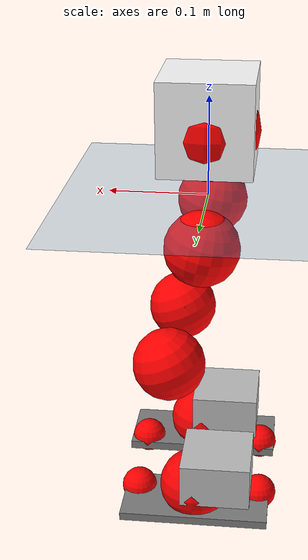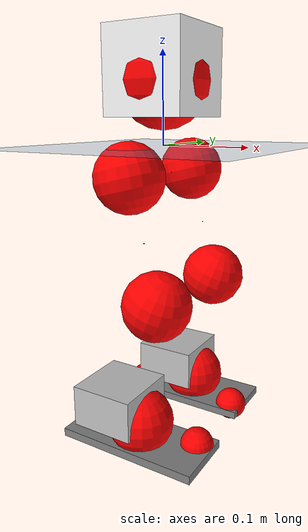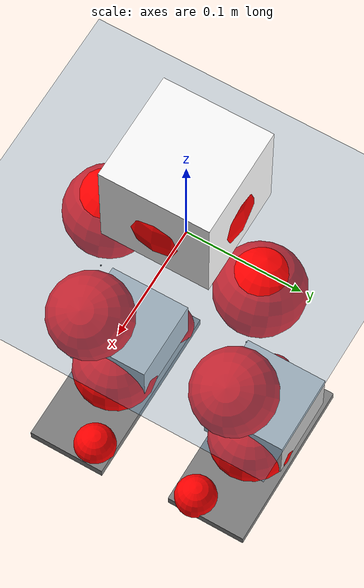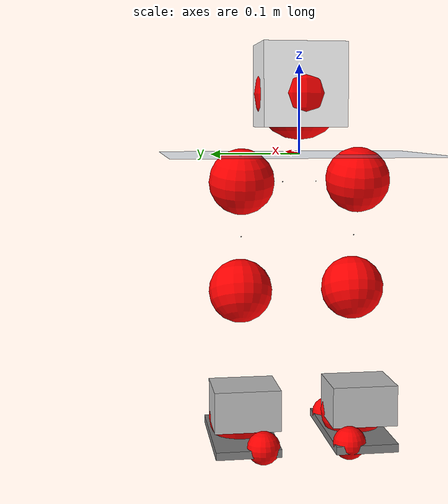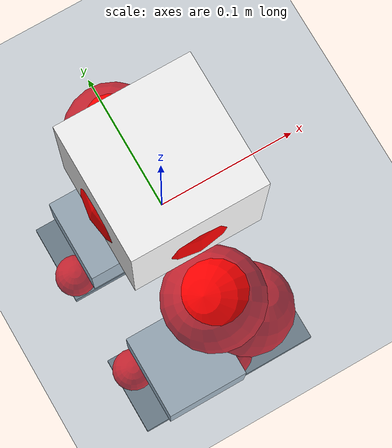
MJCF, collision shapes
<mujoco model="pi_12dof_release_v1">
  <compiler angle="radian" assetdir="assets" balanceinertia="true" inertiafromgeom="false"/>

  <option timestep="0.005" density="1.2" viscosity="2e-05"/>

  <size nkey="1"/>

  <visual>
    <quality shadowsize="8192"/>
    <map shadowclip="0.5"/>
  </visual>

  <default>
    <default class="/">
      <joint armature="0.01" damping="0.01" frictionloss="0.01"/>
      <geom contype="0" conaffinity="0" group="1" solref="-1000 -80"/>
      <site size="0.01 0.005 0.005" group="5"/>
      <general forcelimited="true" biastype="affine" gainprm="20" biasprm="0 -20 -0.5"/>
      <default class="foot">
        <geom size="0.0845 0.036 0.005" type="box" condim="6" group="4" priority="1" friction="0.9 0.2 0.2" solimp="0.015 1 0.005"/>
      </default>
      <default class="reward_collision_sphere">
        <geom group="5" rgba="1 0 0 1"/>
      </default>
    </default>
  </default>

  <asset>
    <texture type="skybox" colorspace="auto" name="//unnamed_texture_0" builtin="gradient" rgb1="0.95 0.95 0.95" rgb2="0.95 0.95 0.95" width="100" height="600"/>
    <texture type="2d" colorspace="auto" name="texplane" builtin="checker" rgb1="0.345 0.575 0.748" rgb2="0.345 0.575 0.748" markrgb="1 1 1" width="512" height="512"/>
    <material name="MatPlane" class="/" texture="texplane" texuniform="true" texrepeat="2 2" specular="0.9"/>
    <mesh name="baselink_1" class="/" file="baselink_1.STL"/>
    <mesh name="r_hip_pitch_link" class="/" file="r_hip_pitch_link.STL"/>
    <mesh name="r_hip_roll_link" class="/" file="r_hip_roll_link.STL"/>
    <mesh name="r_thigh_link" class="/" file="r_thigh_link.STL"/>
    <mesh name="r_calf_link" class="/" file="r_calf_link.STL"/>
    <mesh name="r_ankle_pitch_link" class="/" file="r_ankle_pitch_link.STL"/>
    <mesh name="r_ankle_roll_link" class="/" file="r_ankle_roll_link.STL"/>
    <mesh name="l_hip_pitch_link" class="/" file="l_hip_pitch_link.STL"/>
    <mesh name="l_hip_roll_link" class="/" file="l_hip_roll_link.STL"/>
    <mesh name="l_thigh_link" class="/" file="l_thigh_link.STL"/>
    <mesh name="l_calf_link" class="/" file="l_calf_link.STL"/>
    <mesh name="l_ankle_pitch_link" class="/" file="l_ankle_pitch_link.STL"/>
    <mesh name="l_ankle_roll_link" class="/" file="l_ankle_roll_link.STL"/>
  </asset>

  <worldbody>
    <geom name="floor" class="/" size="100 100 0.125" type="plane" group="0" material="MatPlane"/>
    <light name="toplight_shadow" class="/" pos="0 0 5" dir="0.0990148 0.0990148 -0.990148" type="directional" ambient="0.04 0.04 0.04" diffuse="0.55 0.55 0.55" specular="0.12 0.12 0.12"/>
    <light name="toplight_fill" class="/" pos="0 0 5" dir="0.0990148 0.0990148 -0.990148" type="directional" castshadow="false" ambient="0.04 0.04 0.04" diffuse="0.3 0.3 0.3" specular="0.08 0.08 0.08"/>
    <body name="trunk" pos="0.00036372 0.000118246 0.000223259" quat="1 0.000239388 7.19728e-05 -7.85383e-06">
      <inertial pos="0.0018977 -0.00195138 0.0375474" quat="0.697807 0.00886043 0.010983 0.716147" mass="1.706" diaginertia="0.00798592 0.00444896 0.00334344"/>
      <joint name="//unnamed_joint_0" type="free"/>
      <geom name="//unnamed_geom_1" class="/" type="mesh" density="0" rgba="1 1 1 1" mesh="baselink_1"/>
      <geom name="//unnamed_geom_2" class="/" size="0.0463717 0.0463717 0.0463717" pos="0 0 0.0764691" type="box" rgba="1 1 1 1"/>
      <geom name="//unnamed_geom_3" class="reward_collision_sphere" size="0.0510089" pos="0 0 0.0669105"/>
      <site name="imu" class="/" pos="-0.00889357 -0.00262928 0.00484761" size="0.00927435"/>
      <camera name="track" class="/" pos="0 -1.73237 0" quat="0.707107 0.707107 0 0" mode="trackcom"/>
      <camera name="ego_camera" class="/" pos="0.0720193 0 0.172055" quat="-0.5 -0.5 0.5 0.5"/>
      <body name="r_hip_pitch_link" pos="-0.000194925 -0.0192328 -0.0312636" quat="0.992214 0.000180532 -0.124546 -0.000142322">
        <inertial pos="0.002164 -0.0476993 0.000153808" quat="-0.0220203 0.705925 -0.0300601 0.707306" mass="0.291633" diaginertia="8.73938e-05 4.80101e-05 6.59226e-05"/>
        <joint name="r_hip_pitch_joint" class="/" pos="0 0 0" axis="-0.00383782 -0.999989 -0.00280655" stiffness="0.00455625" range="-1.74857 1.22197" armature="0.00966251" damping="0.000858053" frictionloss="0.00963862"/>
        <geom name="//unnamed_geom_4" class="/" type="mesh" density="0" rgba="0.75294 0.75294 0.75294 1" mesh="r_hip_pitch_link"/>
        <geom name="//unnamed_geom_5" class="/" size="0.000463717 0.000463717 0.000463717" type="box" rgba="0.75294 0.75294 0.75294 1"/>
        <body name="r_hip_roll_link" pos="0.00144332 -0.0487136 0.00130984" quat="1 1.91045e-05 1.82569e-05 -1.24032e-05">
          <inertial pos="-0.0021958 -0.000188936 -0.0578721" quat="0.705209 -0.0787572 -0.0810508 0.699934" mass="0.307856" diaginertia="0.000269057 0.000135709 0.000102133"/>
          <joint name="r_hip_roll_joint" class="/" pos="0 0 0" axis="-0.999964 -0.00843068 -0.0013234" range="-0.142151 0.482243" armature="0.00976138" damping="0.00683803" frictionloss="0.00927902"/>
          <geom name="//unnamed_geom_6" class="/" type="mesh" density="0" rgba="0.75294 0.75294 0.75294 1" mesh="r_hip_roll_link"/>
          <geom name="//unnamed_geom_7" class="/" size="0.000463717 0.000463717 0.000463717" type="box" rgba="0.75294 0.75294 0.75294 1"/>
          <geom name="//unnamed_geom_8" class="reward_collision_sphere" size="0.0370974"/>
          <body name="r_thigh_link" pos="-0.000123299 0.000291733 -0.0673965" quat="1 4.95463e-05 -0.000306335 8.68618e-05">
            <inertial pos="0.000202536 0.000805214 -0.0452301" quat="0.737384 0.675473 -0.0011244 0.000490777" mass="0.0911288" diaginertia="0.000103019 4.60801e-05 4.66707e-05"/>
            <joint name="r_thigh_joint" class="/" pos="0 0 0" axis="-0.000180333 0.000220378 -1" range="-0.318134 0.584415" armature="0.00925776" damping="0.00351446" frictionloss="0.00948158"/>
            <geom name="//unnamed_geom_9" class="/" type="mesh" density="0" rgba="0.75294 0.75294 0.75294 1" mesh="r_thigh_link"/>
            <geom name="//unnamed_geom_10" class="/" size="0.000463717 0.000463717 0.000463717" type="box" rgba="0.75294 0.75294 0.75294 1"/>
            <body name="r_calf_link" pos="-0.000339414 -0.00194574 -0.0663477" quat="0.947633 5.58787e-05 0.319361 6.9227e-05">
              <inertial pos="0.000477977 -0.00065335 -0.0668112" quat="0.999981 -0.00355527 -0.000459405 0.00496997" mass="0.645863" diaginertia="0.00288923 0.00167728 0.000138237"/>
              <joint name="r_calf_joint" class="/" pos="0 0 0" axis="0.00296612 -0.999993 -0.00230683" stiffness="0.000128705" range="-1.65727 0.630897" armature="0.00944366" damping="0.00578385" frictionloss="0.00971931"/>
              <geom name="//unnamed_geom_11" class="/" type="mesh" density="0" rgba="0.75294 0.75294 0.75294 1" mesh="r_calf_link"/>
              <geom name="//unnamed_geom_12" class="/" size="0.000463717 0.000463717 0.000463717" type="box" rgba="0.75294 0.75294 0.75294 1"/>
              <geom name="//unnamed_geom_13" class="reward_collision_sphere" size="0.0370974"/>
              <body name="r_ankle_pitch_link" pos="0.000718464 0.00265087 -0.133359" quat="0.980064 -1.72313e-06 -0.198681 7.67947e-06">
                <inertial pos="0.00473079 0.00356169 -0.000713107" quat="-0.000462695 0.704882 -0.00200664 0.709321" mass="0.137544" diaginertia="0.000251854 0.00010718 9.42051e-05"/>
                <joint name="r_ankle_pitch_joint" class="/" pos="0 0 0" axis="0.00396784 -0.999992 0.000257753" range="-1.2936 0.505196" armature="0.00915704" damping="0" frictionloss="0.00923397"/>
                <geom name="//unnamed_geom_14" class="/" type="mesh" density="0" rgba="0.75294 0.75294 0.75294 1" mesh="r_ankle_pitch_link"/>
                <geom name="//unnamed_geom_15" class="/" size="0.03617 0.0370974 0.0231859" type="box" rgba="0.75294 0.75294 0.75294 1"/>
                <body name="r_ankle_roll_link" pos="0.0744018 0.00202355 -0.000477925" quat="1 -4.83681e-05 -1.97023e-05 -2.65806e-05">
                  <inertial pos="-0.0232986 0.000377007 -0.0127112" quat="0.561855 0.431316 0.434898 0.556012" mass="0.411912" diaginertia="0.000906021 0.000501077 0.000226289"/>
                  <joint name="r_ankle_roll_joint" class="/" pos="0 0 0" axis="-0.999998 0.0017433 7.24591e-05" range="-0.145292 0.131204" armature="0.00878236" damping="0" frictionloss="0.0096482"/>
                  <geom name="//unnamed_geom_16" class="/" type="mesh" density="0" rgba="0.75294 0.75294 0.75294 1" mesh="r_ankle_roll_link"/>
                  <geom name="//unnamed_geom_17" class="/" type="mesh" rgba="0.75294 0.75294 0.75294 1" mesh="r_ankle_roll_link"/>
                  <geom name="right_foot" class="foot" size="0.0822046 0.0351714 0.00464773" pos="-0.0489731 0 -0.042058"/>
                  <geom name="//unnamed_geom_19" class="reward_collision_sphere" size="0.0370974" pos="-0.0480129 0 -0.0191173"/>
                  <geom name="//unnamed_geom_20" class="reward_collision_sphere" size="0.0185487" pos="0.0144039 0.0173237 -0.0382346"/>
                  <geom name="//unnamed_geom_21" class="reward_collision_sphere" size="0.0185487" pos="-0.115231 0.0173237 -0.0382346"/>
                  <site name="right_foot" class="foot" pos="-0.0489731 0 -0.042058" size="0.00927435"/>
                </body>
              </body>
            </body>
          </body>
        </body>
      </body>
      <body name="l_hip_pitch_link" pos="-0.00137369 0.018992 -0.0311775" quat="0.992195 -0.000109878 -0.124693 -3.35703e-05">
        <inertial pos="-0.000183418 0.0475434 -0.000365632" quat="-0.0385537 0.703447 0.0305295 0.709045" mass="0.308333" diaginertia="0.000104832 5.18053e-05 7.86646e-05"/>
        <joint name="l_hip_pitch_joint" class="/" pos="0 0 0" axis="-0.000520041 0.999996 0.00269182" stiffness="0.00207919" range="-1.26745 1.7558" armature="0.00997931" damping="0.00182028" frictionloss="0.00911808"/>
        <geom name="//unnamed_geom_22" class="/" type="mesh" density="0" rgba="0.75294 0.75294 0.75294 1" mesh="l_hip_pitch_link"/>
        <geom name="//unnamed_geom_23" class="/" size="0.000463717 0.000463717 0.000463717" type="box" rgba="0.75294 0.75294 0.75294 1"/>
        <body name="l_hip_roll_link" pos="0.00118737 0.0465544 -0.000130392" quat="1 -1.36538e-05 7.23412e-05 2.8993e-05">
          <inertial pos="-0.00134898 0.000358459 -0.0588347" quat="0.698841 -0.0761952 -0.0772436 0.707" mass="0.310183" diaginertia="0.000271699 0.000136406 0.0001018"/>
          <joint name="l_hip_roll_joint" class="/" pos="0 0 0" axis="-0.999953 0.00378536 -0.00896593" stiffness="0.00101371" range="-0.465955 0.104426" armature="0.00946595" damping="0.0108925" frictionloss="0.00882479"/>
          <geom name="//unnamed_geom_24" class="/" type="mesh" density="0" rgba="0.75294 0.75294 0.75294 1" mesh="l_hip_roll_link"/>
          <geom name="//unnamed_geom_25" class="/" size="0.000463717 0.000463717 0.000463717" type="box" rgba="0.75294 0.75294 0.75294 1"/>
          <geom name="//unnamed_geom_26" class="reward_collision_sphere" size="0.0370974"/>
          <body name="l_thigh_link" pos="0.000832357 -0.000906908 -0.0661211" quat="1 0.000424589 0.000115194 -0.000180737">
            <inertial pos="0.000441767 -0.00135837 -0.0458108" quat="0.671414 0.741034 -0.00433489 0.00733304" mass="0.0900607" diaginertia="0.000102426 4.65789e-05 4.52872e-05"/>
            <joint name="l_thigh_joint" class="/" pos="0 0 0" axis="0.00502839 0.00192485 -0.999986" range="-0.588239 0.28361" armature="0.00880278" damping="0" frictionloss="0.00902221"/>
            <geom name="//unnamed_geom_27" class="/" type="mesh" density="0" rgba="0.75294 0.75294 0.75294 1" mesh="l_thigh_link"/>
            <geom name="//unnamed_geom_28" class="/" size="0.000463717 0.000463717 0.000463717" type="box" rgba="0.75294 0.75294 0.75294 1"/>
            <body name="l_calf_link" pos="-0.000674756 -0.000806159 -0.0671558" quat="0.947625 -0.000160141 0.319384 7.40575e-05">
              <inertial pos="-0.00104703 0.00295993 -0.0666433" quat="0.99999 0.00303555 -0.000878646 0.00306752" mass="0.65603" diaginertia="0.0029157 0.00172782 0.000138111"/>
              <joint name="l_calf_joint" class="/" pos="0 0 0" axis="-0.00074288 0.999997 -0.00229146" stiffness="0.00244389" range="-0.666491 1.6124" armature="0.00888107" damping="0.00661777" frictionloss="0.00879886"/>
              <geom name="//unnamed_geom_29" class="/" type="mesh" density="0" rgba="0.75294 0.75294 0.75294 1" mesh="l_calf_link"/>
              <geom name="//unnamed_geom_30" class="/" size="0.000463717 0.000463717 0.000463717" type="box" rgba="0.75294 0.75294 0.75294 1"/>
              <geom name="//unnamed_geom_31" class="reward_collision_sphere" size="0.0370974"/>
              <body name="l_ankle_pitch_link" pos="0.00150952 0.00206617 -0.132613" quat="0.980068 5.84347e-07 -0.198662 -3.75666e-06">
                <inertial pos="0.00468389 -0.000563314 0.000330282" quat="-0.00251521 0.707133 0.00185341 0.707074" mass="0.134146" diaginertia="0.000242794 0.000105149 9.33679e-05"/>
                <joint name="l_ankle_pitch_joint" class="/" pos="0 0 0" axis="0.000456824 1 0.000247819" range="-0.502057 1.29951" armature="0.00929783" damping="0.00150937" frictionloss="0.0102233"/>
                <geom name="//unnamed_geom_32" class="/" type="mesh" density="0" rgba="0.75294 0.75294 0.75294 1" mesh="l_ankle_pitch_link"/>
                <geom name="//unnamed_geom_33" class="/" size="0.03617 0.0370974 0.0231859" type="box" rgba="0.75294 0.75294 0.75294 1"/>
                <body name="l_ankle_roll_link" pos="0.071367 0.0012599 -0.000311694" quat="1 -0.000281167 -0.000392188 -0.000121607">
                  <inertial pos="-0.0225016 -0.000385357 -0.0140913" quat="0.558158 0.429183 0.436287 0.560281" mass="0.41773" diaginertia="0.000936169 0.00050797 0.000226037"/>
                  <joint name="l_ankle_roll_joint" class="/" pos="0 0 0" axis="-0.999998 0.00153101 -0.000997218" range="-0.150801 0.153677" armature="0.00957886" damping="0.00956317" frictionloss="0.00854285"/>
                  <geom name="//unnamed_geom_34" class="/" type="mesh" density="0" rgba="0.75294 0.75294 0.75294 1" mesh="l_ankle_roll_link"/>
                  <geom name="//unnamed_geom_35" class="/" type="mesh" rgba="0.75294 0.75294 0.75294 1" mesh="l_ankle_roll_link"/>
                  <geom name="left_foot" class="foot" size="0.0772461 0.0363784 0.00433783" pos="-0.0489731 0 -0.042058"/>
                  <geom name="//unnamed_geom_37" class="reward_collision_sphere" size="0.0370974" pos="-0.0480129 0 -0.0191173"/>
                  <geom name="//unnamed_geom_38" class="reward_collision_sphere" size="0.0185487" pos="0.0144039 -0.0173237 -0.0382346"/>
                  <geom name="//unnamed_geom_39" class="reward_collision_sphere" size="0.0185487" pos="-0.115231 -0.0173237 -0.0382346"/>
                  <site name="left_foot" class="foot" pos="-0.0489731 0 -0.042058" size="0.00927435"/>
                </body>
              </body>
            </body>
          </body>
        </body>
      </body>
    </body>
  </worldbody>

  <contact>
    <pair class="/" geom1="floor" geom2="right_foot" name="//unnamed_contact_1"/>
    <pair class="/" geom1="floor" geom2="left_foot" name="//unnamed_contact_0"/>
  </contact>

  <actuator>
    <general name="r_hip_pitch_joint" class="/" joint="r_hip_pitch_joint" forcerange="-18.8941 18.8941" gainprm="18.4105" biasprm="0 -18.4105 -0.481226"/>
    <general name="r_hip_roll_joint" class="/" joint="r_hip_roll_joint" forcerange="-19.0407 19.0407" gainprm="18.4105" biasprm="0 -18.4105 -0.481226"/>
    <general name="r_thigh_joint" class="/" joint="r_thigh_joint" forcerange="-19.6166 19.6166" gainprm="18.4105" biasprm="0 -18.4105 -0.481226"/>
    <general name="r_calf_joint" class="/" joint="r_calf_joint" forcerange="-19.704 19.704" gainprm="18.4105" biasprm="0 -18.4105 -0.481226"/>
    <general name="r_ankle_pitch_joint" class="/" joint="r_ankle_pitch_joint" forcerange="-19.0407 19.0407" gainprm="18.4105" biasprm="0 -18.4105 -0.481226"/>
    <general name="r_ankle_roll_joint" class="/" joint="r_ankle_roll_joint" forcerange="-19.5729 19.5729" gainprm="18.4105" biasprm="0 -18.4105 -0.481226"/>
    <general name="l_hip_pitch_joint" class="/" joint="l_hip_pitch_joint" forcerange="-19.1505 19.1505" gainprm="18.4105" biasprm="0 -18.4105 -0.481226"/>
    <general name="l_hip_roll_joint" class="/" joint="l_hip_roll_joint" forcerange="-20.0632 20.0632" gainprm="18.4105" biasprm="0 -18.4105 -0.481226"/>
    <general name="l_thigh_joint" class="/" joint="l_thigh_joint" forcerange="-19.5935 19.5935" gainprm="18.4105" biasprm="0 -18.4105 -0.481226"/>
    <general name="l_calf_joint" class="/" joint="l_calf_joint" forcerange="-19.9048 19.9048" gainprm="18.4105" biasprm="0 -18.4105 -0.481226"/>
    <general name="l_ankle_pitch_joint" class="/" joint="l_ankle_pitch_joint" forcerange="-18.7425 18.7425" gainprm="18.4105" biasprm="0 -18.4105 -0.481226"/>
    <general name="l_ankle_roll_joint" class="/" joint="l_ankle_roll_joint" forcerange="-18.8019 18.8019" gainprm="18.4105" biasprm="0 -18.4105 -0.481226"/>
  </actuator>

  <sensor>
    <gyro site="imu" name="imu_angular_velocity"/>
    <velocimeter site="imu" name="imu_linear_velocity"/>
    <framelinvel objtype="site" objname="left_foot" name="left_foot_global_linear_velocity"/>
    <framelinvel objtype="site" objname="right_foot" name="right_foot_global_linear_velocity"/>
  </sensor>

  <keyframe>
    <key name="home" qpos="0 0 0.291 1 0 0 0 0.4 0 0 -0.8 0.4 0 -0.4 0 0 0.8 -0.4 0"/>
  </keyframe>
</mujoco>
